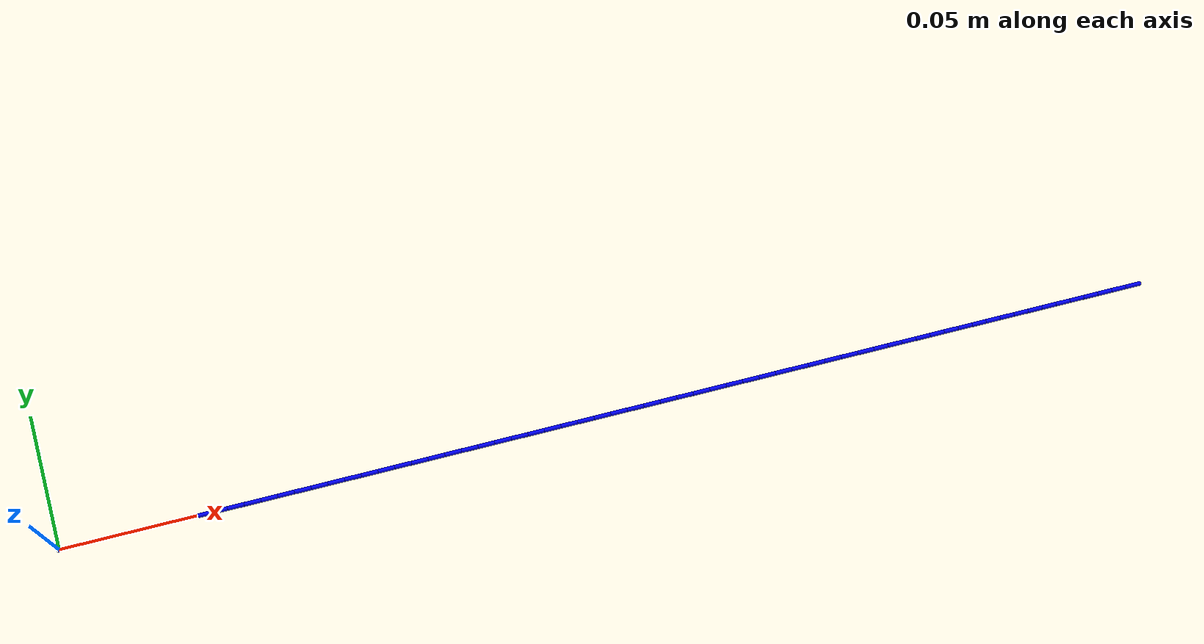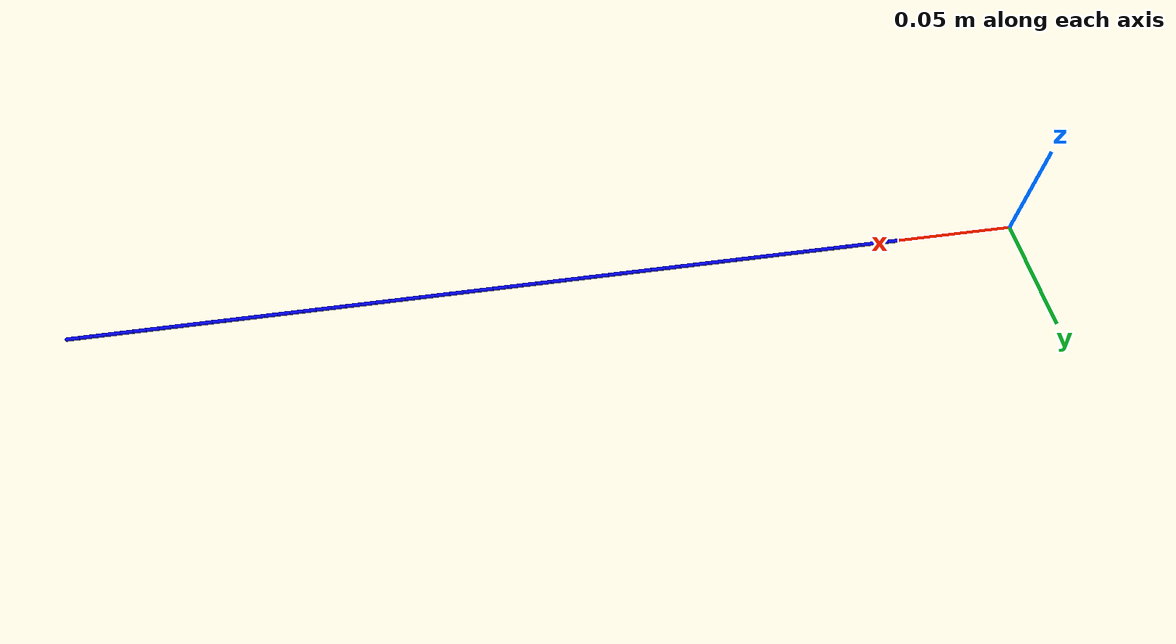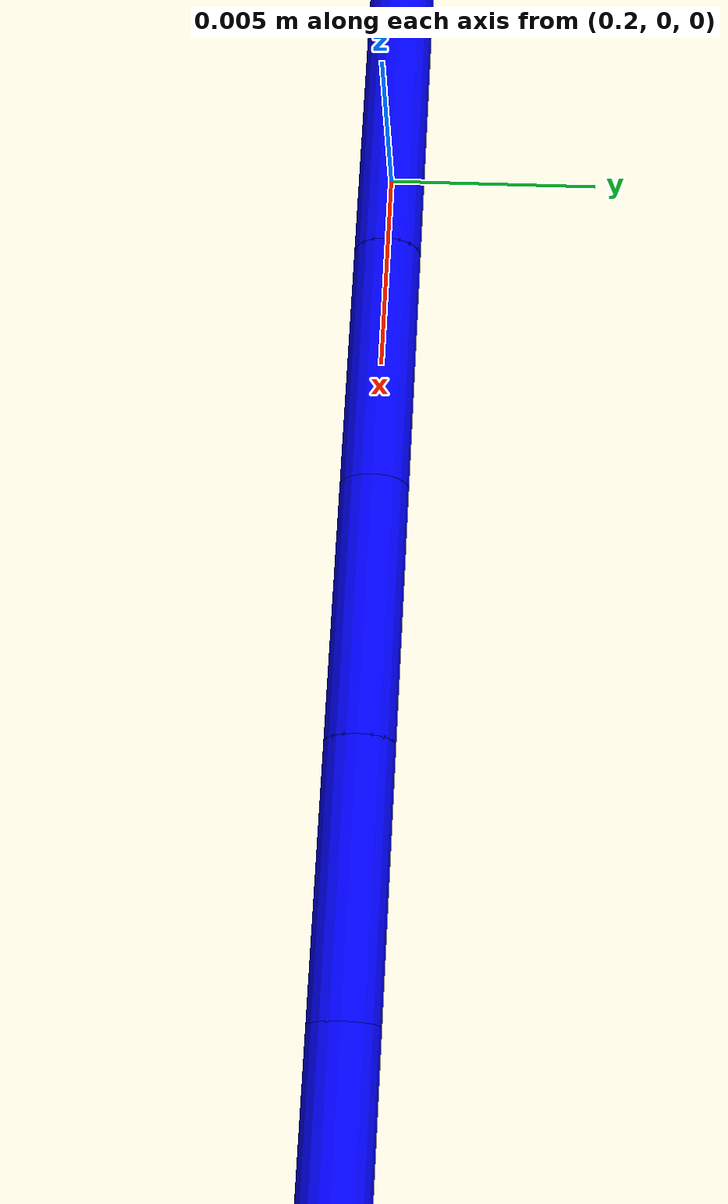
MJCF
<mujoco model="composite">
  <compiler angle="radian"/>
  <size memory="1G"/>
  <statistic meansize="0.00803478" extent="0.4016" center="0.2 0 0"/>
  <extension>
    <plugin plugin="mujoco.elasticity.cable">
      <instance name="compositeA">
        <config key="bend" value="1e9"/>
        <config key="flat" value="true"/>
        <config key="vmax" value="0.005"/>
      </instance>
      <instance name="compositeB">
        <config key="bend" value="1e6"/>
        <config key="flat" value="true"/>
        <config key="vmax" value="0.005"/>
      </instance>
    </plugin>
  </extension>
  <custom>
    <text name="composite_A" data="rope_A"/>
    <text name="composite_B" data="rope_B"/>
  </custom>
  <worldbody>
    <body name="my_composite">
      <body name="AB_first">
        <geom name="AG0" size="0.0008 0.00306122" pos="0.00306122 0 0" quat="0.707107 0 -0.707107 0" type="capsule" condim="1" rgba="0 0 1 1"/>
        <site name="AS_first" pos="0 0 0" group="3"/>
        <plugin instance="compositeA"/>
        <body name="AB_1" pos="0.00612245 0 0">
          <joint name="AJ_1" pos="0 0 0" type="ball" group="3" stiffness="0.001" margin="0.02" damping="0.001"/>
          <geom name="AG1" size="0.0008 0.00306122" pos="0.00306122 0 0" quat="0.707107 0 -0.707107 0" type="capsule" condim="1" rgba="0 0 1 1"/>
          <plugin instance="compositeA"/>
          <body name="AB_2" pos="0.00612245 0 0">
            <joint name="AJ_2" pos="0 0 0" type="ball" group="3" stiffness="0.001" margin="0.02" damping="0.001"/>
            <geom name="AG2" size="0.0008 0.00306122" pos="0.00306122 0 0" quat="0.707107 0 -0.707107 0" type="capsule" condim="1" rgba="0 0 1 1"/>
            <plugin instance="compositeA"/>
            <body name="AB_3" pos="0.00612245 0 0">
              <joint name="AJ_3" pos="0 0 0" type="ball" group="3" stiffness="0.001" margin="0.02" damping="0.001"/>
              <geom name="AG3" size="0.0008 0.00306122" pos="0.00306122 0 0" quat="0.707107 0 -0.707107 0" type="capsule" condim="1" rgba="0 0 1 1"/>
              <plugin instance="compositeA"/>
              <body name="AB_4" pos="0.00612245 0 0">
                <joint name="AJ_4" pos="0 0 0" type="ball" group="3" stiffness="0.001" margin="0.02" damping="0.001"/>
                <geom name="AG4" size="0.0008 0.00306122" pos="0.00306122 0 0" quat="0.707107 0 -0.707107 0" type="capsule" condim="1" rgba="0 0 1 1"/>
                <plugin instance="compositeA"/>
                <body name="AB_5" pos="0.00612245 0 0">
                  <joint name="AJ_5" pos="0 0 0" type="ball" group="3" stiffness="0.001" margin="0.02" damping="0.001"/>
                  <geom name="AG5" size="0.0008 0.00306122" pos="0.00306122 0 0" quat="0.707107 0 -0.707107 0" type="capsule" condim="1" rgba="0 0 1 1"/>
                  <plugin instance="compositeA"/>
                  <body name="AB_6" pos="0.00612245 0 0">
                    <joint name="AJ_6" pos="0 0 0" type="ball" group="3" stiffness="0.001" margin="0.02" damping="0.001"/>
                    <geom name="AG6" size="0.0008 0.00306123" pos="0.00306123 0 0" quat="0.707107 0 -0.707107 0" type="capsule" condim="1" rgba="0 0 1 1"/>
                    <plugin instance="compositeA"/>
                    <body name="AB_7" pos="0.00612245 0 0">
                      <joint name="AJ_7" pos="0 0 0" type="ball" group="3" stiffness="0.001" margin="0.02" damping="0.001"/>
                      <geom name="AG7" size="0.0008 0.00306122" pos="0.00306122 0 0" quat="0.707107 0 -0.707107 0" type="capsule" condim="1" rgba="0 0 1 1"/>
                      <plugin instance="compositeA"/>
                      <body name="AB_8" pos="0.00612245 0 0">
                        <joint name="AJ_8" pos="0 0 0" type="ball" group="3" stiffness="0.001" margin="0.02" damping="0.001"/>
                        <geom name="AG8" size="0.0008 0.00306122" pos="0.00306122 0 0" quat="0.707107 0 -0.707107 0" type="capsule" condim="1" rgba="0 0 1 1"/>
                        <plugin instance="compositeA"/>
                        <body name="AB_9" pos="0.00612245 0 0">
                          <joint name="AJ_9" pos="0 0 0" type="ball" group="3" stiffness="0.001" margin="0.02" damping="0.001"/>
                          <geom name="AG9" size="0.0008 0.00306123" pos="0.00306123 0 0" quat="0.707107 0 -0.707107 0" type="capsule" condim="1" rgba="0 0 1 1"/>
                          <plugin instance="compositeA"/>
                          <body name="AB_10" pos="0.00612245 0 0">
                            <joint name="AJ_10" pos="0 0 0" type="ball" group="3" stiffness="0.001" margin="0.02" damping="0.001"/>
                            <geom name="AG10" size="0.0008 0.00306122" pos="0.00306122 0 0" quat="0.707107 0 -0.707107 0" type="capsule" condim="1" rgba="0 0 1 1"/>
                            <plugin instance="compositeA"/>
                            <body name="AB_11" pos="0.00612245 0 0">
                              <joint name="AJ_11" pos="0 0 0" type="ball" group="3" stiffness="0.001" margin="0.02" damping="0.001"/>
                              <geom name="AG11" size="0.0008 0.00306122" pos="0.00306122 0 0" quat="0.707107 0 -0.707107 0" type="capsule" condim="1" rgba="0 0 1 1"/>
                              <plugin instance="compositeA"/>
                              <body name="AB_12" pos="0.00612245 0 0">
                                <joint name="AJ_12" pos="0 0 0" type="ball" group="3" stiffness="0.001" margin="0.02" damping="0.001"/>
                                <geom name="AG12" size="0.0008 0.00306122" pos="0.00306122 0 0" quat="0.707107 0 -0.707107 0" type="capsule" condim="1" rgba="0 0 1 1"/>
                                <plugin instance="compositeA"/>
                                <body name="AB_13" pos="0.00612246 0 0">
                                  <joint name="AJ_13" pos="0 0 0" type="ball" group="3" stiffness="0.001" margin="0.02" damping="0.001"/>
                                  <geom name="AG13" size="0.0008 0.00306123" pos="0.00306123 0 0" quat="0.707107 0 -0.707107 0" type="capsule" condim="1" rgba="0 0 1 1"/>
                                  <plugin instance="compositeA"/>
                                  <body name="AB_14" pos="0.00612245 0 0">
                                    <joint name="AJ_14" pos="0 0 0" type="ball" group="3" stiffness="0.001" margin="0.02" damping="0.001"/>
                                    <geom name="AG14" size="0.0008 0.00306122" pos="0.00306122 0 0" quat="0.707107 0 -0.707107 0" type="capsule" condim="1" rgba="0 0 1 1"/>
                                    <plugin instance="compositeA"/>
                                    <body name="AB_15" pos="0.00612245 0 0">
                                      <joint name="AJ_15" pos="0 0 0" type="ball" group="3" stiffness="0.001" margin="0.02" damping="0.001"/>
                                      <geom name="AG15" size="0.0008 0.00306122" pos="0.00306122 0 0" quat="0.707107 0 -0.707107 0" type="capsule" condim="1" rgba="0 0 1 1"/>
                                      <plugin instance="compositeA"/>
                                      <body name="AB_16" pos="0.00612245 0 0">
                                        <joint name="AJ_16" pos="0 0 0" type="ball" group="3" stiffness="0.001" margin="0.02" damping="0.001"/>
                                        <geom name="AG16" size="0.0008 0.00306122" pos="0.00306122 0 0" quat="0.707107 0 -0.707107 0" type="capsule" condim="1" rgba="0 0 1 1"/>
                                        <plugin instance="compositeA"/>
                                        <body name="AB_17" pos="0.00612245 0 0">
                                          <joint name="AJ_17" pos="0 0 0" type="ball" group="3" stiffness="0.001" margin="0.02" damping="0.001"/>
                                          <geom name="AG17" size="0.0008 0.00306122" pos="0.00306122 0 0" quat="0.707107 0 -0.707107 0" type="capsule" condim="1" rgba="0 0 1 1"/>
                                          <plugin instance="compositeA"/>
                                          <body name="AB_18" pos="0.00612246 0 0">
                                            <joint name="AJ_18" pos="0 0 0" type="ball" group="3" stiffness="0.001" margin="0.02" damping="0.001"/>
                                            <geom name="AG18" size="0.0008 0.00306123" pos="0.00306123 0 0" quat="0.707107 0 -0.707107 0" type="capsule" condim="1" rgba="0 0 1 1"/>
                                            <plugin instance="compositeA"/>
                                            <body name="AB_19" pos="0.00612245 0 0">
                                              <joint name="AJ_19" pos="0 0 0" type="ball" group="3" stiffness="0.001" margin="0.02" damping="0.001"/>
                                              <geom name="AG19" size="0.0008 0.00306122" pos="0.00306122 0 0" quat="0.707107 0 -0.707107 0" type="capsule" condim="1" rgba="0 0 1 1"/>
                                              <plugin instance="compositeA"/>
                                              <body name="AB_20" pos="0.00612246 0 0">
                                                <joint name="AJ_20" pos="0 0 0" type="ball" group="3" stiffness="0.001" margin="0.02" damping="0.001"/>
                                                <geom name="AG20" size="0.0008 0.00306123" pos="0.00306123 0 0" quat="0.707107 0 -0.707107 0" type="capsule" condim="1" rgba="0 0 1 1"/>
                                                <plugin instance="compositeA"/>
                                                <body name="AB_21" pos="0.00612244 0 0">
                                                  <joint name="AJ_21" pos="0 0 0" type="ball" group="3" stiffness="0.001" margin="0.02" damping="0.001"/>
                                                  <geom name="AG21" size="0.0008 0.00306122" pos="0.00306122 0 0" quat="0.707107 0 -0.707107 0" type="capsule" condim="1" rgba="0 0 1 1"/>
                                                  <plugin instance="compositeA"/>
                                                  <body name="AB_22" pos="0.00612246 0 0">
                                                    <joint name="AJ_22" pos="0 0 0" type="ball" group="3" stiffness="0.001" margin="0.02" damping="0.001"/>
                                                    <geom name="AG22" size="0.0008 0.00306123" pos="0.00306123 0 0" quat="0.707107 0 -0.707107 0" type="capsule" condim="1" rgba="0 0 1 1"/>
                                                    <plugin instance="compositeA"/>
                                                    <body name="AB_23" pos="0.00612244 0 0">
                                                      <joint name="AJ_23" pos="0 0 0" type="ball" group="3" stiffness="0.001" margin="0.02" damping="0.001"/>
                                                      <geom name="AG23" size="0.0008 0.00306122" pos="0.00306122 0 0" quat="0.707107 0 -0.707107 0" type="capsule" condim="1" rgba="0 0 1 1"/>
                                                      <plugin instance="compositeA"/>
                                                      <body name="AB_24" pos="0.00612246 0 0">
                                                        <joint name="AJ_24" pos="0 0 0" type="ball" group="3" stiffness="0.001" margin="0.02" damping="0.001"/>
                                                        <geom name="AG24" size="0.0008 0.00306123" pos="0.00306123 0 0" quat="0.707107 0 -0.707107 0" type="capsule" condim="1" rgba="0 0 1 1"/>
                                                        <plugin instance="compositeA"/>
                                                        <body name="AB_25" pos="0.00612244 0 0">
                                                          <joint name="AJ_25" pos="0 0 0" type="ball" group="3" stiffness="0.001" margin="0.02" damping="0.001"/>
                                                          <geom name="AG25" size="0.0008 0.00306122" pos="0.00306122 0 0" quat="0.707107 0 -0.707107 0" type="capsule" condim="1" rgba="0 0 1 1"/>
                                                          <plugin instance="compositeA"/>
                                                          <body name="AB_26" pos="0.00612246 0 0">
                                                            <joint name="AJ_26" pos="0 0 0" type="ball" group="3" stiffness="0.001" margin="0.02" damping="0.001"/>
                                                            <geom name="AG26" size="0.0008 0.00306123" pos="0.00306123 0 0" quat="0.707107 0 -0.707107 0" type="capsule" condim="1" rgba="0 0 1 1"/>
                                                            <plugin instance="compositeA"/>
                                                            <body name="AB_27" pos="0.00612246 0 0">
                                                              <joint name="AJ_27" pos="0 0 0" type="ball" group="3" stiffness="0.001" margin="0.02" damping="0.001"/>
                                                              <geom name="AG27" size="0.0008 0.00306123" pos="0.00306123 0 0" quat="0.707107 0 -0.707107 0" type="capsule" condim="1" rgba="0 0 1 1"/>
                                                              <plugin instance="compositeA"/>
                                                              <body name="AB_28" pos="0.00612244 0 0">
                                                                <joint name="AJ_28" pos="0 0 0" type="ball" group="3" stiffness="0.001" margin="0.02" damping="0.001"/>
                                                                <geom name="AG28" size="0.0008 0.00306122" pos="0.00306122 0 0" quat="0.707107 0 -0.707107 0" type="capsule" condim="1" rgba="0 0 1 1"/>
                                                                <plugin instance="compositeA"/>
                                                                <body name="AB_29" pos="0.00612246 0 0">
                                                                  <joint name="AJ_29" pos="0 0 0" type="ball" group="3" stiffness="0.001" margin="0.02" damping="0.001"/>
                                                                  <geom name="AG29" size="0.0008 0.00306123" pos="0.00306123 0 0" quat="0.707107 0 -0.707107 0" type="capsule" condim="1" rgba="0 0 1 1"/>
                                                                  <plugin instance="compositeA"/>
                                                                  <body name="AB_30" pos="0.00612244 0 0">
                                                                    <joint name="AJ_30" pos="0 0 0" type="ball" group="3" stiffness="0.001" margin="0.02" damping="0.001"/>
                                                                    <geom name="AG30" size="0.0008 0.00306122" pos="0.00306122 0 0" quat="0.707107 0 -0.707107 0" type="capsule" condim="1" rgba="0 0 1 1"/>
                                                                    <plugin instance="compositeA"/>
                                                                    <body name="AB_31" pos="0.00612246 0 0">
                                                                      <joint name="AJ_31" pos="0 0 0" type="ball" group="3" stiffness="0.001" margin="0.02" damping="0.001"/>
                                                                      <geom name="AG31" size="0.0008 0.00306123" pos="0.00306123 0 0" quat="0.707107 0 -0.707107 0" type="capsule" condim="1" rgba="0 0 1 1"/>
                                                                      <plugin instance="compositeA"/>
                                                                      <body name="AB_32" pos="0.00612246 0 0">
                                                                        <joint name="AJ_32" pos="0 0 0" type="ball" group="3" stiffness="0.001" margin="0.02" damping="0.001"/>
                                                                        <geom name="AG32" size="0.0008 0.00306123" pos="0.00306123 0 0" quat="0.707107 0 -0.707107 0" type="capsule" condim="1" rgba="0 0 1 1"/>
                                                                        <plugin instance="compositeA"/>
                                                                        <body name="AB_33" pos="0.00612244 0 0">
                                                                          <joint name="AJ_33" pos="0 0 0" type="ball" group="3" stiffness="0.001" margin="0.02" damping="0.001"/>
                                                                          <geom name="AG33" size="0.0008 0.00306122" pos="0.00306122 0 0" quat="0.707107 0 -0.707107 0" type="capsule" condim="1" rgba="0 0 1 1"/>
                                                                          <plugin instance="compositeA"/>
                                                                          <body name="AB_34" pos="0.00612246 0 0">
                                                                            <joint name="AJ_34" pos="0 0 0" type="ball" group="3" stiffness="0.001" margin="0.02" damping="0.001"/>
                                                                            <geom name="AG34" size="0.0008 0.00306123" pos="0.00306123 0 0" quat="0.707107 0 -0.707107 0" type="capsule" condim="1" rgba="0 0 1 1"/>
                                                                            <plugin instance="compositeA"/>
                                                                            <body name="AB_35" pos="0.00612244 0 0">
                                                                              <joint name="AJ_35" pos="0 0 0" type="ball" group="3" stiffness="0.001" margin="0.02" damping="0.001"/>
                                                                              <geom name="AG35" size="0.0008 0.00306122" pos="0.00306122 0 0" quat="0.707107 0 -0.707107 0" type="capsule" condim="1" rgba="0 0 1 1"/>
                                                                              <plugin instance="compositeA"/>
                                                                              <body name="AB_36" pos="0.00612246 0 0">
                                                                                <joint name="AJ_36" pos="0 0 0" type="ball" group="3" stiffness="0.001" margin="0.02" damping="0.001"/>
                                                                                <geom name="AG36" size="0.0008 0.00306123" pos="0.00306123 0 0" quat="0.707107 0 -0.707107 0" type="capsule" condim="1" rgba="0 0 1 1"/>
                                                                                <plugin instance="compositeA"/>
                                                                                <body name="AB_37" pos="0.00612246 0 0">
                                                                                  <joint name="AJ_37" pos="0 0 0" type="ball" group="3" stiffness="0.001" margin="0.02" damping="0.001"/>
                                                                                  <geom name="AG37" size="0.0008 0.00306123" pos="0.00306123 0 0" quat="0.707107 0 -0.707107 0" type="capsule" condim="1" rgba="0 0 1 1"/>
                                                                                  <plugin instance="compositeA"/>
                                                                                  <body name="AB_38" pos="0.00612244 0 0">
                                                                                    <joint name="AJ_38" pos="0 0 0" type="ball" group="3" stiffness="0.001" margin="0.02" damping="0.001"/>
                                                                                    <geom name="AG38" size="0.0008 0.00306122" pos="0.00306122 0 0" quat="0.707107 0 -0.707107 0" type="capsule" condim="1" rgba="0 0 1 1"/>
                                                                                    <plugin instance="compositeA"/>
                                                                                    <body name="AB_39" pos="0.00612246 0 0">
                                                                                      <joint name="AJ_39" pos="0 0 0" type="ball" group="3" stiffness="0.001" margin="0.02" damping="0.001"/>
                                                                                      <geom name="AG39" size="0.0008 0.00306123" pos="0.00306123 0 0" quat="0.707107 0 -0.707107 0" type="capsule" condim="1" rgba="0 0 1 1"/>
                                                                                      <plugin instance="compositeA"/>
                                                                                      <body name="AB_40" pos="0.00612244 0 0">
                                                                                        <joint name="AJ_40" pos="0 0 0" type="ball" group="3" stiffness="0.001" margin="0.02" damping="0.001"/>
                                                                                        <geom name="AG40" size="0.0008 0.00306122" pos="0.00306122 0 0" quat="0.707107 0 -0.707107 0" type="capsule" condim="1" rgba="0 0 1 1"/>
                                                                                        <plugin instance="compositeA"/>
                                                                                        <body name="AB_41" pos="0.00612247 0 0">
                                                                                          <joint name="AJ_41" pos="0 0 0" type="ball" group="3" stiffness="0.001" margin="0.02" damping="0.001"/>
                                                                                          <geom name="AG41" size="0.0008 0.00306123" pos="0.00306123 0 0" quat="0.707107 0 -0.707107 0" type="capsule" condim="1" rgba="0 0 1 1"/>
                                                                                          <plugin instance="compositeA"/>
                                                                                          <body name="AB_42" pos="0.00612244 0 0">
                                                                                            <joint name="AJ_42" pos="0 0 0" type="ball" group="3" stiffness="0.001" margin="0.02" damping="0.001"/>
                                                                                            <geom name="AG42" size="0.0008 0.00306122" pos="0.00306122 0 0" quat="0.707107 0 -0.707107 0" type="capsule" condim="1" rgba="0 0 1 1"/>
                                                                                            <plugin instance="compositeA"/>
                                                                                            <body name="AB_43" pos="0.00612244 0 0">
                                                                                              <joint name="AJ_43" pos="0 0 0" type="ball" group="3" stiffness="0.001" margin="0.02" damping="0.001"/>
                                                                                              <geom name="AG43" size="0.0008 0.00306122" pos="0.00306122 0 0" quat="0.707107 0 -0.707107 0" type="capsule" condim="1" rgba="0 0 1 1"/>
                                                                                              <plugin instance="compositeA"/>
                                                                                              <body name="AB_44" pos="0.00612244 0 0">
                                                                                                <joint name="AJ_44" pos="0 0 0" type="ball" group="3" stiffness="0.001" margin="0.02" damping="0.001"/>
                                                                                                <geom name="AG44" size="0.0008 0.00306122" pos="0.00306122 0 0" quat="0.707107 0 -0.707107 0" type="capsule" condim="1" rgba="0 0 1 1"/>
                                                                                                <plugin instance="compositeA"/>
                                                                                                <body name="AB_45" pos="0.00612247 0 0">
                                                                                                  <joint name="AJ_45" pos="0 0 0" type="ball" group="3" stiffness="0.001" margin="0.02" damping="0.001"/>
                                                                                                  <geom name="AG45" size="0.0008 0.00306123" pos="0.00306123 0 0" quat="0.707107 0 -0.707107 0" type="capsule" condim="1" rgba="0 0 1 1"/>
                                                                                                  <plugin instance="compositeA"/>
                                                                                                  <body name="AB_46" pos="0.00612244 0 0">
                                                                                                    <joint name="AJ_46" pos="0 0 0" type="ball" group="3" stiffness="0.001" margin="0.02" damping="0.001"/>
                                                                                                    <geom name="AG46" size="0.0008 0.00306122" pos="0.00306122 0 0" quat="0.707107 0 -0.707107 0" type="capsule" condim="1" rgba="0 0 1 1"/>
                                                                                                    <plugin instance="compositeA"/>
                                                                                                    <body name="AB_47" pos="0.00612244 0 0">
                                                                                                      <joint name="AJ_47" pos="0 0 0" type="ball" group="3" stiffness="0.001" margin="0.02" damping="0.001"/>
                                                                                                      <geom name="AG47" size="0.0008 0.00306122" pos="0.00306122 0 0" quat="0.707107 0 -0.707107 0" type="capsule" condim="1" rgba="0 0 1 1"/>
                                                                                                      <plugin instance="compositeA"/>
                                                                                                      <body name="AB_last" pos="0.00612247 0 0">
                                                                                                        <joint name="AJ_last" pos="0 0 0" type="ball" group="3" stiffness="0.001" margin="0.02" damping="0.001"/>
                                                                                                        <geom name="AG48" size="0.0008 0.00306123" pos="0.00306123 0 0" quat="0.707107 0 -0.707107 0" type="capsule" condim="1" rgba="0 0 1 1"/>
                                                                                                        <site name="AS_last" pos="0.00612247 0 0" group="3"/>
                                                                                                        <plugin instance="compositeA"/>
                                                                                                      </body>
                                                                                                    </body>
                                                                                                  </body>
                                                                                                </body>
                                                                                              </body>
                                                                                            </body>
                                                                                          </body>
                                                                                        </body>
                                                                                      </body>
                                                                                    </body>
                                                                                  </body>
                                                                                </body>
                                                                              </body>
                                                                            </body>
                                                                          </body>
                                                                        </body>
                                                                      </body>
                                                                    </body>
                                                                  </body>
                                                                </body>
                                                              </body>
                                                            </body>
                                                          </body>
                                                        </body>
                                                      </body>
                                                    </body>
                                                  </body>
                                                </body>
                                              </body>
                                            </body>
                                          </body>
                                        </body>
                                      </body>
                                    </body>
                                  </body>
                                </body>
                              </body>
                            </body>
                          </body>
                        </body>
                      </body>
                    </body>
                  </body>
                </body>
              </body>
            </body>
          </body>
        </body>
      </body>
      <body name="BB_first" pos="0.3 0 0">
        <joint name="BJ_first" pos="0 0 0" type="ball" group="3" stiffness="0.001" margin="0.02" damping="0.001"/>
        <geom name="BG0" size="0.0008 0.00263158" pos="0.00263158 0 0" quat="0.707107 0 -0.707107 0" type="capsule" condim="1" rgba="0 0 1 1"/>
        <site name="BS_first" pos="0 0 0" group="3"/>
        <plugin instance="compositeB"/>
        <body name="BB_1" pos="0.00526316 0 0">
          <joint name="BJ_1" pos="0 0 0" type="ball" group="3" stiffness="0.001" margin="0.02" damping="0.001"/>
          <geom name="BG1" size="0.0008 0.00263158" pos="0.00263158 0 0" quat="0.707107 0 -0.707107 0" type="capsule" condim="1" rgba="0 0 1 1"/>
          <plugin instance="compositeB"/>
          <body name="BB_2" pos="0.00526316 0 0">
            <joint name="BJ_2" pos="0 0 0" type="ball" group="3" stiffness="0.001" margin="0.02" damping="0.001"/>
            <geom name="BG2" size="0.0008 0.00263158" pos="0.00263158 0 0" quat="0.707107 0 -0.707107 0" type="capsule" condim="1" rgba="0 0 1 1"/>
            <plugin instance="compositeB"/>
            <body name="BB_3" pos="0.00526316 0 0">
              <joint name="BJ_3" pos="0 0 0" type="ball" group="3" stiffness="0.001" margin="0.02" damping="0.001"/>
              <geom name="BG3" size="0.0008 0.00263158" pos="0.00263158 0 0" quat="0.707107 0 -0.707107 0" type="capsule" condim="1" rgba="0 0 1 1"/>
              <plugin instance="compositeB"/>
              <body name="BB_4" pos="0.00526316 0 0">
                <joint name="BJ_4" pos="0 0 0" type="ball" group="3" stiffness="0.001" margin="0.02" damping="0.001"/>
                <geom name="BG4" size="0.0008 0.00263158" pos="0.00263158 0 0" quat="0.707107 0 -0.707107 0" type="capsule" condim="1" rgba="0 0 1 1"/>
                <plugin instance="compositeB"/>
                <body name="BB_5" pos="0.00526316 0 0">
                  <joint name="BJ_5" pos="0 0 0" type="ball" group="3" stiffness="0.001" margin="0.02" damping="0.001"/>
                  <geom name="BG5" size="0.0008 0.00263158" pos="0.00263158 0 0" quat="0.707107 0 -0.707107 0" type="capsule" condim="1" rgba="0 0 1 1"/>
                  <plugin instance="compositeB"/>
                  <body name="BB_6" pos="0.00526316 0 0">
                    <joint name="BJ_6" pos="0 0 0" type="ball" group="3" stiffness="0.001" margin="0.02" damping="0.001"/>
                    <geom name="BG6" size="0.0008 0.00263158" pos="0.00263158 0 0" quat="0.707107 0 -0.707107 0" type="capsule" condim="1" rgba="0 0 1 1"/>
                    <plugin instance="compositeB"/>
                    <body name="BB_7" pos="0.00526316 0 0">
                      <joint name="BJ_7" pos="0 0 0" type="ball" group="3" stiffness="0.001" margin="0.02" damping="0.001"/>
                      <geom name="BG7" size="0.0008 0.00263158" pos="0.00263158 0 0" quat="0.707107 0 -0.707107 0" type="capsule" condim="1" rgba="0 0 1 1"/>
                      <plugin instance="compositeB"/>
                      <body name="BB_8" pos="0.00526316 0 0">
                        <joint name="BJ_8" pos="0 0 0" type="ball" group="3" stiffness="0.001" margin="0.02" damping="0.001"/>
                        <geom name="BG8" size="0.0008 0.00263158" pos="0.00263158 0 0" quat="0.707107 0 -0.707107 0" type="capsule" condim="1" rgba="0 0 1 1"/>
                        <plugin instance="compositeB"/>
                        <body name="BB_9" pos="0.00526316 0 0">
                          <joint name="BJ_9" pos="0 0 0" type="ball" group="3" stiffness="0.001" margin="0.02" damping="0.001"/>
                          <geom name="BG9" size="0.0008 0.00263158" pos="0.00263158 0 0" quat="0.707107 0 -0.707107 0" type="capsule" condim="1" rgba="0 0 1 1"/>
                          <plugin instance="compositeB"/>
                          <body name="BB_10" pos="0.00526316 0 0">
                            <joint name="BJ_10" pos="0 0 0" type="ball" group="3" stiffness="0.001" margin="0.02" damping="0.001"/>
                            <geom name="BG10" size="0.0008 0.00263158" pos="0.00263158 0 0" quat="0.707107 0 -0.707107 0" type="capsule" condim="1" rgba="0 0 1 1"/>
                            <plugin instance="compositeB"/>
                            <body name="BB_11" pos="0.00526316 0 0">
                              <joint name="BJ_11" pos="0 0 0" type="ball" group="3" stiffness="0.001" margin="0.02" damping="0.001"/>
                              <geom name="BG11" size="0.0008 0.00263158" pos="0.00263158 0 0" quat="0.707107 0 -0.707107 0" type="capsule" condim="1" rgba="0 0 1 1"/>
                              <plugin instance="compositeB"/>
                              <body name="BB_12" pos="0.00526316 0 0">
                                <joint name="BJ_12" pos="0 0 0" type="ball" group="3" stiffness="0.001" margin="0.02" damping="0.001"/>
                                <geom name="BG12" size="0.0008 0.00263158" pos="0.00263158 0 0" quat="0.707107 0 -0.707107 0" type="capsule" condim="1" rgba="0 0 1 1"/>
                                <plugin instance="compositeB"/>
                                <body name="BB_13" pos="0.00526316 0 0">
                                  <joint name="BJ_13" pos="0 0 0" type="ball" group="3" stiffness="0.001" margin="0.02" damping="0.001"/>
                                  <geom name="BG13" size="0.0008 0.00263158" pos="0.00263158 0 0" quat="0.707107 0 -0.707107 0" type="capsule" condim="1" rgba="0 0 1 1"/>
                                  <plugin instance="compositeB"/>
                                  <body name="BB_14" pos="0.00526316 0 0">
                                    <joint name="BJ_14" pos="0 0 0" type="ball" group="3" stiffness="0.001" margin="0.02" damping="0.001"/>
                                    <geom name="BG14" size="0.0008 0.00263158" pos="0.00263158 0 0" quat="0.707107 0 -0.707107 0" type="capsule" condim="1" rgba="0 0 1 1"/>
                                    <plugin instance="compositeB"/>
                                    <body name="BB_15" pos="0.00526316 0 0">
                                      <joint name="BJ_15" pos="0 0 0" type="ball" group="3" stiffness="0.001" margin="0.02" damping="0.001"/>
                                      <geom name="BG15" size="0.0008 0.00263158" pos="0.00263158 0 0" quat="0.707107 0 -0.707107 0" type="capsule" condim="1" rgba="0 0 1 1"/>
                                      <plugin instance="compositeB"/>
                                      <body name="BB_16" pos="0.00526316 0 0">
                                        <joint name="BJ_16" pos="0 0 0" type="ball" group="3" stiffness="0.001" margin="0.02" damping="0.001"/>
                                        <geom name="BG16" size="0.0008 0.00263158" pos="0.00263158 0 0" quat="0.707107 0 -0.707107 0" type="capsule" condim="1" rgba="0 0 1 1"/>
                                        <plugin instance="compositeB"/>
                                        <body name="BB_17" pos="0.00526316 0 0">
                                          <joint name="BJ_17" pos="0 0 0" type="ball" group="3" stiffness="0.001" margin="0.02" damping="0.001"/>
                                          <geom name="BG17" size="0.0008 0.00263158" pos="0.00263158 0 0" quat="0.707107 0 -0.707107 0" type="capsule" condim="1" rgba="0 0 1 1"/>
                                          <plugin instance="compositeB"/>
                                          <body name="BB_last" pos="0.00526316 0 0">
                                            <joint name="BJ_last" pos="0 0 0" type="ball" group="3" stiffness="0.001" margin="0.02" damping="0.001"/>
                                            <geom name="BG18" size="0.0008 0.00263158" pos="0.00263158 0 0" quat="0.707107 0 -0.707107 0" type="capsule" condim="1" rgba="0 0 1 1"/>
                                            <site name="BS_last" pos="0.00526316 0 0" group="3"/>
                                            <plugin instance="compositeB"/>
                                          </body>
                                        </body>
                                      </body>
                                    </body>
                                  </body>
                                </body>
                              </body>
                            </body>
                          </body>
                        </body>
                      </body>
                    </body>
                  </body>
                </body>
              </body>
            </body>
          </body>
        </body>
      </body>
    </body>
  </worldbody>
  <contact>
    <exclude body1="AB_first" body2="AB_1"/>
    <exclude body1="AB_1" body2="AB_2"/>
    <exclude body1="AB_2" body2="AB_3"/>
    <exclude body1="AB_3" body2="AB_4"/>
    <exclude body1="AB_4" body2="AB_5"/>
    <exclude body1="AB_5" body2="AB_6"/>
    <exclude body1="AB_6" body2="AB_7"/>
    <exclude body1="AB_7" body2="AB_8"/>
    <exclude body1="AB_8" body2="AB_9"/>
    <exclude body1="AB_9" body2="AB_10"/>
    <exclude body1="AB_10" body2="AB_11"/>
    <exclude body1="AB_11" body2="AB_12"/>
    <exclude body1="AB_12" body2="AB_13"/>
    <exclude body1="AB_13" body2="AB_14"/>
    <exclude body1="AB_14" body2="AB_15"/>
    <exclude body1="AB_15" body2="AB_16"/>
    <exclude body1="AB_16" body2="AB_17"/>
    <exclude body1="AB_17" body2="AB_18"/>
    <exclude body1="AB_18" body2="AB_19"/>
    <exclude body1="AB_19" body2="AB_20"/>
    <exclude body1="AB_20" body2="AB_21"/>
    <exclude body1="AB_21" body2="AB_22"/>
    <exclude body1="AB_22" body2="AB_23"/>
    <exclude body1="AB_23" body2="AB_24"/>
    <exclude body1="AB_24" body2="AB_25"/>
    <exclude body1="AB_25" body2="AB_26"/>
    <exclude body1="AB_26" body2="AB_27"/>
    <exclude body1="AB_27" body2="AB_28"/>
    <exclude body1="AB_28" body2="AB_29"/>
    <exclude body1="AB_29" body2="AB_30"/>
    <exclude body1="AB_30" body2="AB_31"/>
    <exclude body1="AB_31" body2="AB_32"/>
    <exclude body1="AB_32" body2="AB_33"/>
    <exclude body1="AB_33" body2="AB_34"/>
    <exclude body1="AB_34" body2="AB_35"/>
    <exclude body1="AB_35" body2="AB_36"/>
    <exclude body1="AB_36" body2="AB_37"/>
    <exclude body1="AB_37" body2="AB_38"/>
    <exclude body1="AB_38" body2="AB_39"/>
    <exclude body1="AB_39" body2="AB_40"/>
    <exclude body1="AB_40" body2="AB_41"/>
    <exclude body1="AB_41" body2="AB_42"/>
    <exclude body1="AB_42" body2="AB_43"/>
    <exclude body1="AB_43" body2="AB_44"/>
    <exclude body1="AB_44" body2="AB_45"/>
    <exclude body1="AB_45" body2="AB_46"/>
    <exclude body1="AB_46" body2="AB_47"/>
    <exclude body1="AB_47" body2="AB_last"/>
    <exclude body1="AB_last" body2="BB_first"/>
    <exclude body1="BB_first" body2="BB_1"/>
    <exclude body1="BB_1" body2="BB_2"/>
    <exclude body1="BB_2" body2="BB_3"/>
    <exclude body1="BB_3" body2="BB_4"/>
    <exclude body1="BB_4" body2="BB_5"/>
    <exclude body1="BB_5" body2="BB_6"/>
    <exclude body1="BB_6" body2="BB_7"/>
    <exclude body1="BB_7" body2="BB_8"/>
    <exclude body1="BB_8" body2="BB_9"/>
    <exclude body1="BB_9" body2="BB_10"/>
    <exclude body1="BB_10" body2="BB_11"/>
    <exclude body1="BB_11" body2="BB_12"/>
    <exclude body1="BB_12" body2="BB_13"/>
    <exclude body1="BB_13" body2="BB_14"/>
    <exclude body1="BB_14" body2="BB_15"/>
    <exclude body1="BB_15" body2="BB_16"/>
    <exclude body1="BB_16" body2="BB_17"/>
    <exclude body1="BB_17" body2="BB_last"/>
  </contact>
  <equality>
    <connect name="right_boundary" body1="AB_last" body2="BB_first" anchor="0 0 0" solref="-10000 -10000"/>
  </equality>
</mujoco>
